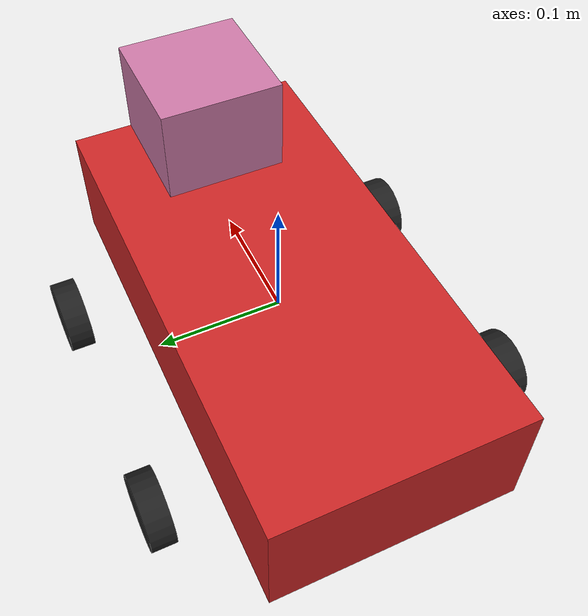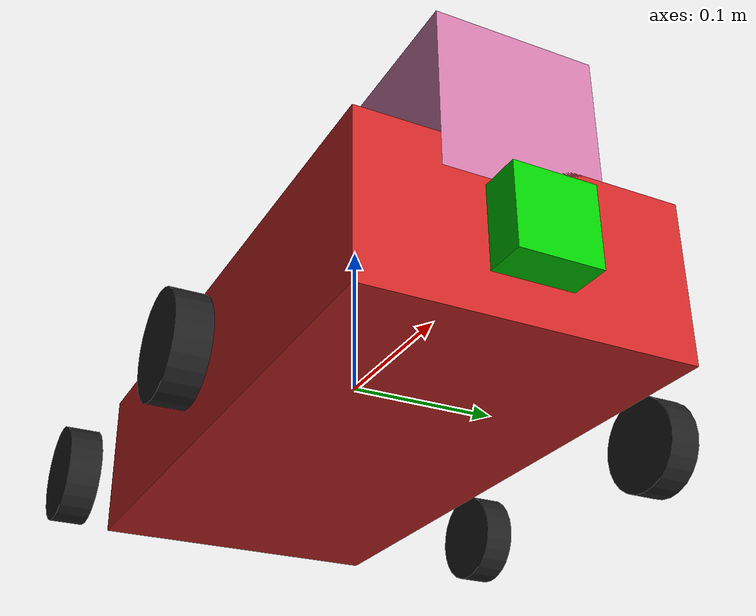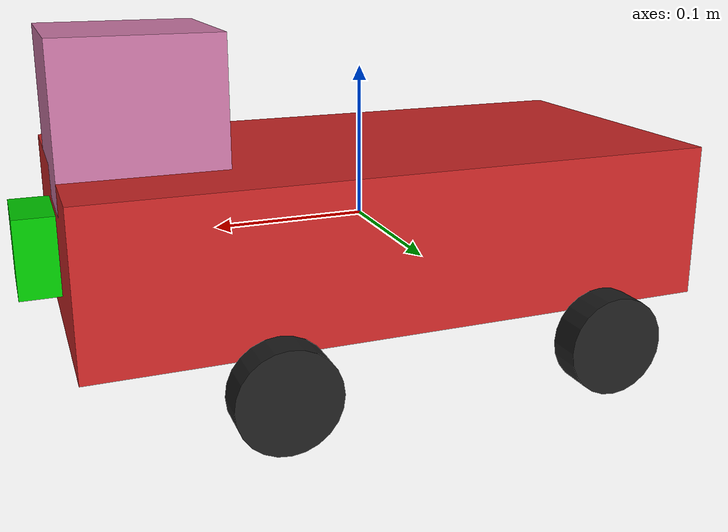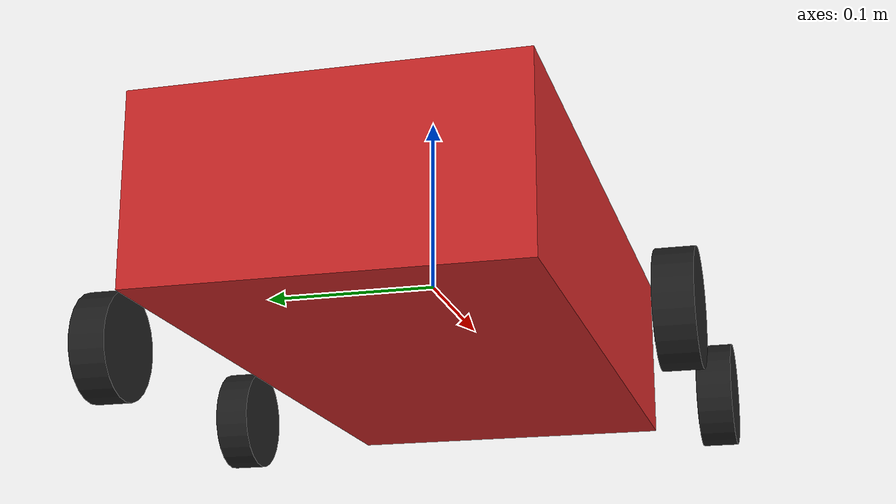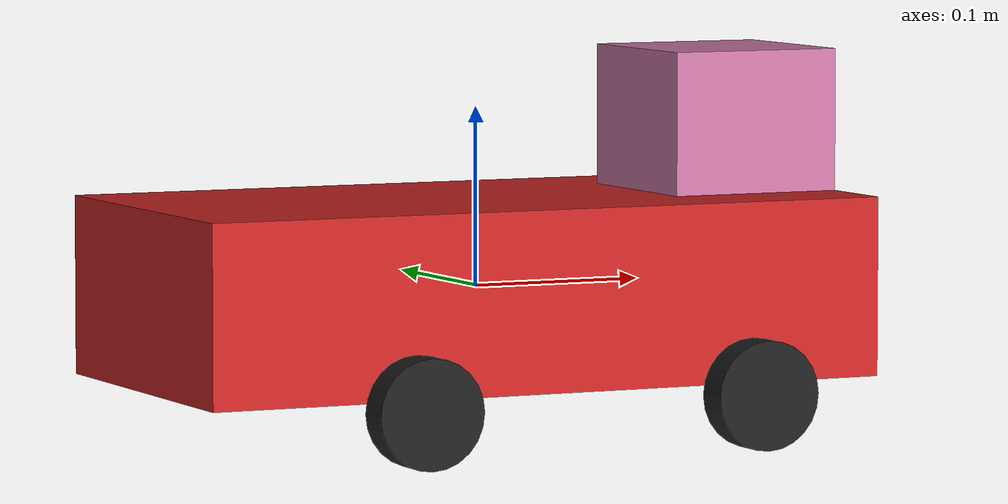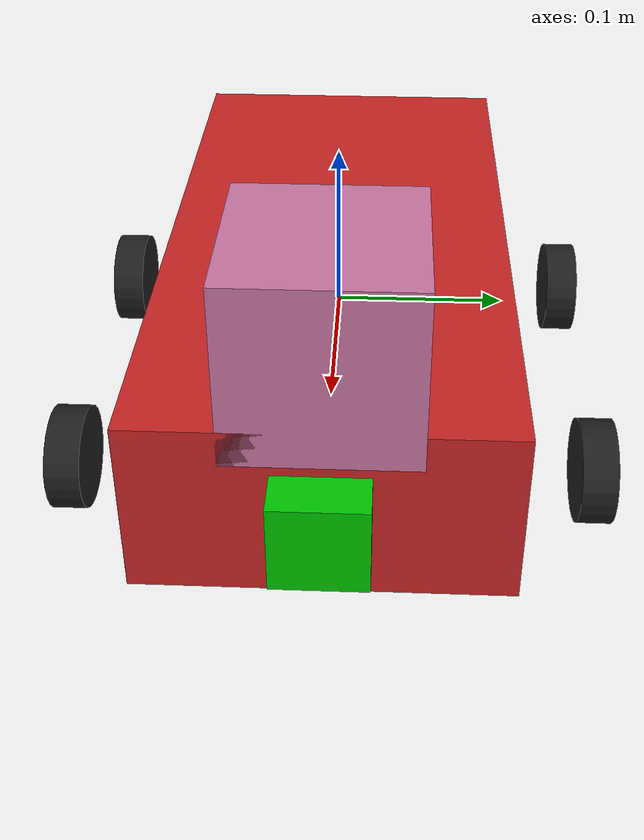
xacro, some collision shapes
<?xml version='1.0'?>

<robot name="callisto" xmlns:xacro="http://www.ros.org/wiki/xacro">

  <xacro:include filename="$(find callisto_description)/urdf/callisto.gazebo" />
  <xacro:include filename="$(find callisto_description)/urdf/materials.xacro" />
  <xacro:include filename="$(find callisto_description)/urdf/macros.xacro" />

  <xacro:property name="cameraSize" value="0.05"/>
  <xacro:property name="cameraMass" value="0.1"/>

  <link name='chassis'>
    <pose>0 0 0.1 0 0 0</pose>

    <inertial>
      <mass value="10.0"/>
      <origin xyz="0.0 0 0.1" rpy=" 0 0 0"/>
      <inertia
          ixx="0.5" ixy="0" ixz="0"
          iyy="0.1" iyz="0"
          izz="0.1"
      />
    </inertial>

    <collision name='collision'>
      <geometry>
        <box size=".4 .2 .1"/>
      </geometry>
    </collision>

    <visual name='chassis_visual'>
      <origin xyz="0 0 0" rpy=" 0 0 0"/>
      <geometry>
        <box size=".4 .2 .1"/>
      </geometry>
    </visual>
    </link>

  <link name="fleft_wheel">
    <!--origin xyz="-0.1 0.13 -0.05" rpy="0 1.5707 1.5707"/-->
    <collision name="collision">
      <origin xyz="0 0 0" rpy="0 1.5707 1.5707"/>
      <geometry>
        <cylinder radius="0.03" length="0.02"/>
      </geometry>
    </collision>
    <visual name="fleft_wheel_visual">
      <origin xyz="0 0 0" rpy="0 1.5707 1.5707"/>
      <geometry>
        <cylinder radius="0.03" length="0.02"/>
      </geometry>
    </visual>
    <inertial>
      <origin xyz="0 0 0" rpy="0 1.5707 1.5707"/>
      <mass value="5"/>
      <cylinder_inertia m="5" r="0.03" h="0.02"/>
      <inertia
        ixx="1.0" ixy="0.0" ixz="0.0"
        iyy="1.0" iyz="0.0"
        izz="1.0"/>
    </inertial>
  </link>

  <link name="fright_wheel">
    <!--origin xyz="-0.1 -0.13 -.05" rpy="0 1.5707 1.5707"/-->
    <collision name="collision">
      <origin xyz="0 0 0" rpy="0 1.5707 1.5707"/>
      <geometry>
        <cylinder radius="0.03" length="0.02"/>
      </geometry>
    </collision>
    <visual name="fright_wheel_visual">
      <origin xyz="0 0 0" rpy="0 1.5707 1.5707"/>
      <geometry>
        <cylinder radius="0.03" length="0.02"/>
      </geometry>
    </visual>
    <inertial>
      <origin xyz="0 0 0" rpy="0 1.5707 1.5707"/>
      <mass value="5"/>
      <cylinder_inertia m="5" r="0.03" h="0.02"/>
      <inertia
        ixx="1.0" ixy="0.0" ixz="0.0"
        iyy="1.0" iyz="0.0"
        izz="1.0"/>
    </inertial>
  </link>

  <joint type="continuous" name="fleft_wheel_hinge">
    <origin xyz="-0.1 0.15 -0.05" rpy="0 0 0"/>
    <child link="fleft_wheel"/>
    <parent link="chassis"/>
    <axis xyz="0 1 0" rpy="0 0 0"/>
    <limit effort="100" velocity="100"/>
    <joint_properties damping="0.0" friction="0.0"/>
  </joint>

  <joint type="continuous" name="fright_wheel_hinge">
    <origin xyz="-0.1 -0.15 -0.05" rpy="0 0 0"/>
    <child link="fright_wheel"/>
    <parent link="chassis"/>
    <axis xyz="0 1 0" rpy="0 0 0"/>
    <limit effort="100" velocity="100"/>
    <joint_properties damping="0.0" friction="0.0"/>
  </joint>

  <link name="left_wheel">
    <!--origin xyz="0.1 0.13 -.05" rpy="0 1.5707 1.5707"/-->
    <collision name="collision">
      <origin xyz="0 0 0" rpy="0 1.5707 1.5707"/>
      <geometry>
        <cylinder radius="0.03" length="0.02"/>
      </geometry>
    </collision>
    <visual name="left_wheel_visual">
      <origin xyz="0 0 0" rpy="0 1.5707 1.5707"/>
      <geometry>
        <cylinder radius="0.03" length="0.02"/>
      </geometry>
    </visual>
    <inertial>
      <origin xyz="0 0 0" rpy="0 1.5707 1.5707"/>
      <mass value="5"/>
      <cylinder_inertia m="5" r="0.03" h="0.02"/>
      <inertia
        ixx="1.0" ixy="0.0" ixz="0.0"
        iyy="1.0" iyz="0.0"
        izz="1.0"/>
    </inertial>
  </link>

  <link name="right_wheel">
    <!--origin xyz="0.1 -0.13 -.05" rpy="0 1.5707 1.5707"/-->
    <collision name="collision">
      <origin xyz="0 0 0" rpy="0 1.5707 1.5707"/>
      <geometry>
        <cylinder radius="0.03" length="0.02"/>
      </geometry>
    </collision>
    <visual name="right_wheel_visual">
      <origin xyz="0 0 0" rpy="0 1.5707 1.5707"/>
      <geometry>
        <cylinder radius="0.03" length="0.02"/>
      </geometry>
    </visual>
    <inertial>
      <origin xyz="0 0 0" rpy="0 1.5707 1.5707"/>
      <mass value="5"/>
      <cylinder_inertia m="5" r="0.03" h="0.02"/>
      <inertia
        ixx="1.0" ixy="0.0" ixz="0.0"
        iyy="1.0" iyz="0.0"
        izz="1.0"/>
    </inertial>
  </link>

  <joint type="continuous" name="left_wheel_hinge">
    <origin xyz="0.1 0.15 -.05" rpy="0 0 0"/>
    <child link="left_wheel"/>
    <parent link="chassis"/>
    <axis xyz="0 1 0" rpy="0 0 0"/>
    <limit effort="100" velocity="100"/>
    <joint_properties damping="0.0" friction="0.0"/>
  </joint>

  <joint type="continuous" name="right_wheel_hinge">
    <origin xyz="0.1 -0.15 -.05" rpy="0 0 0"/>
    <child link="right_wheel"/>
    <parent link="chassis"/>
    <axis xyz="0 1 0" rpy="0 0 0"/>
    <limit effort="100" velocity="100"/>
    <joint_properties damping="0.0" friction="0.0"/>
  </joint>

 <link name="camera">
    <collision>
      <origin xyz="0 0 0" rpy="0 0 0"/>
      <geometry>
        <box size="${cameraSize} ${cameraSize} ${cameraSize}"/>
      </geometry>
    </collision>

    <visual>
      <origin xyz="0 0 0" rpy="0 0 0"/>
      <geometry>
        <box size="${cameraSize} ${cameraSize} ${cameraSize}"/>
      </geometry>
      <material name="green"/>
    </visual>

    <inertial>
      <mass value="${cameraMass}" />
      <origin xyz="0 0 0" rpy="0 0 0"/>
      <box_inertia m="${cameraMass}" x="${cameraSize}" y="${cameraSize}" z="${cameraSize}" />
      <inertia ixx="1e-6" ixy="0" ixz="0" iyy="1e-6" iyz="0" izz="1e-6" />
    </inertial>
  </link>

  <joint name="camera_joint" type="fixed">
    <axis xyz="0 1 0" />
    <origin xyz=".2 0 0" rpy="0 0 0"/>
    <parent link="chassis"/>
    <child link="camera"/>
  </joint>

  <joint name="hokuyo_joint" type="fixed">
    <axis xyz="0 1 0" />
    <origin xyz=".15 0 .1" rpy="0 0 0"/>
    <parent link="chassis"/>
    <child link="hokuyo"/>
  </joint>

  <!-- Hokuyo Laser -->
  <link name="hokuyo">
    <collision>
      <origin xyz="0 0 -0.02" rpy="0 0 0"/>
      <geometry>
    <box size="0.1 0.1 0.1"/>
      </geometry>
    </collision>

    <visual>
      <origin xyz="0 0 -0.02" rpy="0 0 0"/>
      <geometry>
        <mesh filename="package://callisto_description/meshes/hokuyo.dae"/>
      </geometry>
    </visual>

    <inertial>
      <mass value="1e-5" />
      <origin xyz="0 0 0" rpy="0 0 0"/>
      <inertia ixx="1e-6" ixy="0" ixz="0" iyy="1e-6" iyz="0" izz="1e-6" />
    </inertial>
  </link>

</robot>

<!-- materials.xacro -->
<robot>

  <material name="black">
    <color rgba="0.0 0.0 0.0 1.0"/>
  </material>

  <material name="blue">
    <color rgba="0.0 0.0 0.8 1.0"/>
  </material>

  <material name="green">
    <color rgba="0.0 0.8 0.0 1.0"/>
  </material>

  <material name="grey">
    <color rgba="0.2 0.2 0.2 1.0"/>
  </material>

  <material name="orange">
    <color rgba="${52/255} ${152/255} ${219/255} 1.0"/>
  </material>

  <material name="brown">
    <color rgba="${222/255} ${207/255} ${195/255} 1.0"/>
  </material>

  <material name="red">
    <color rgba="0.8 0.0 0.0 1.0"/>
  </material>

  <material name="white">
    <color rgba="1.0 1.0 1.0 1.0"/>
  </material>

</robot>
